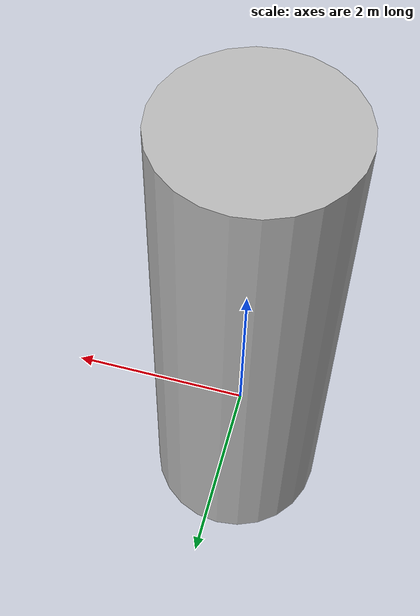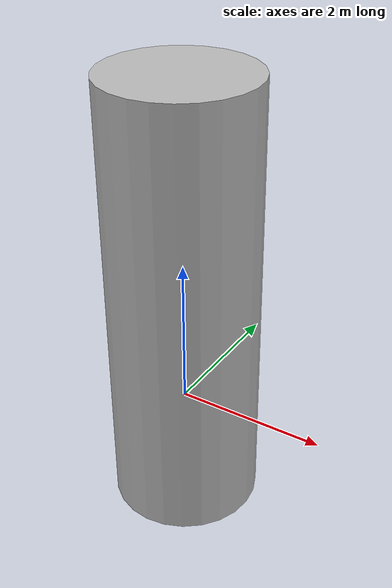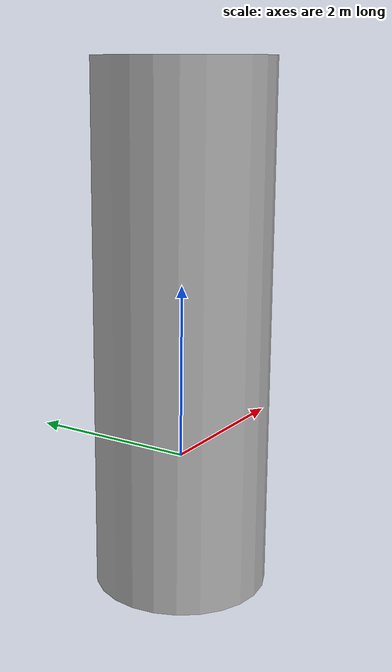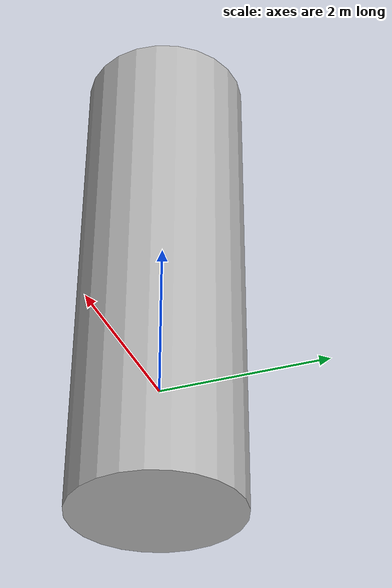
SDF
<?xml version="1.0"?>
<sdf version="1.6">
<model name='obj_of_int'>

  <link name='cylinder_'>
    <pose>0 0 1.5 0 0 0</pose>
    <inertial>
      <mass>10</mass>
      <inertia>
        <ixx>0.166667</ixx>
        <ixy>0</ixy>
        <ixz>0</ixz>
        <iyy>0.166667</iyy>
        <iyz>0</iyz>
        <izz>0.166667</izz>
      </inertia>
    </inertial>
    <collision name='collision'>
      <geometry>
        <cylinder>
          <radius>1</radius>
          <length>3</length>
        </cylinder>
      </geometry>
      <surface>
        <friction>
          <ode>
            <mu>1.16</mu>
            <mu2>1.16</mu2>
            <slip1>0</slip1>
            <slip2>0</slip2>
          </ode>
        </friction>
      </surface>
    </collision>
    <visual name='visual'>
      <geometry>
        <cylinder>
          <radius>1</radius>
          <length>6</length>
        </cylinder>
      </geometry>
      <material>
        <script>
          <uri>model://obj_of_int/materials/scripts</uri>
          <uri>model://obj_of_int/materials/textures</uri>
          <name>obj_of_int/old_scratched_metal</name>
        </script>
      </material>
    </visual>
    <self_collide>0</self_collide>
    <kinematic>0</kinematic>
  </link>

  <joint name='ground_link' type='fixed'>
    <parent>world</parent>
    <child>cylinder_</child>
    <pose>0 0 0 0 -0 0</pose>
  </joint>

</model>
</sdf>
